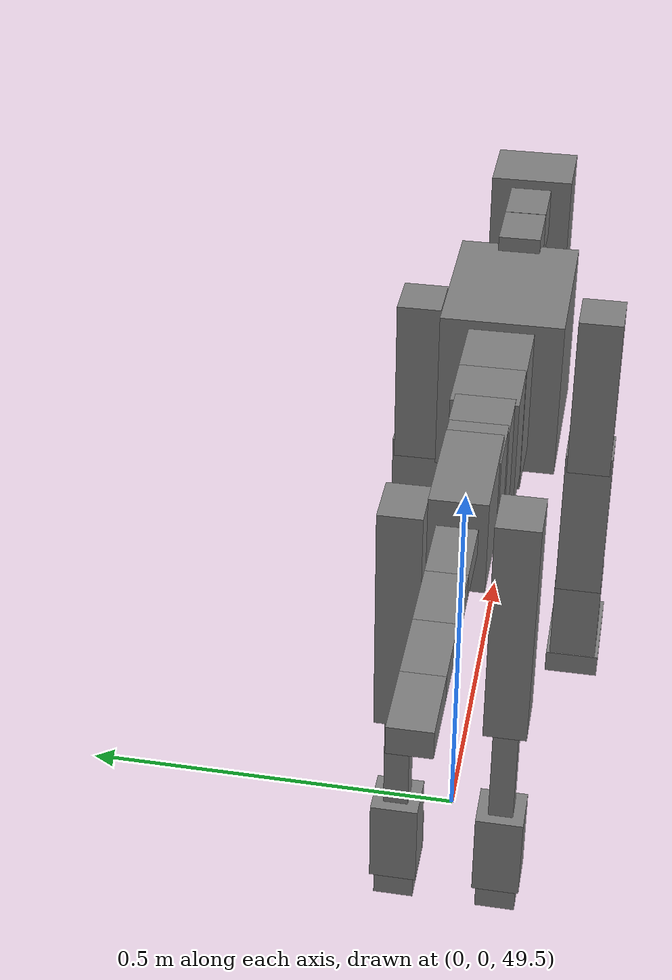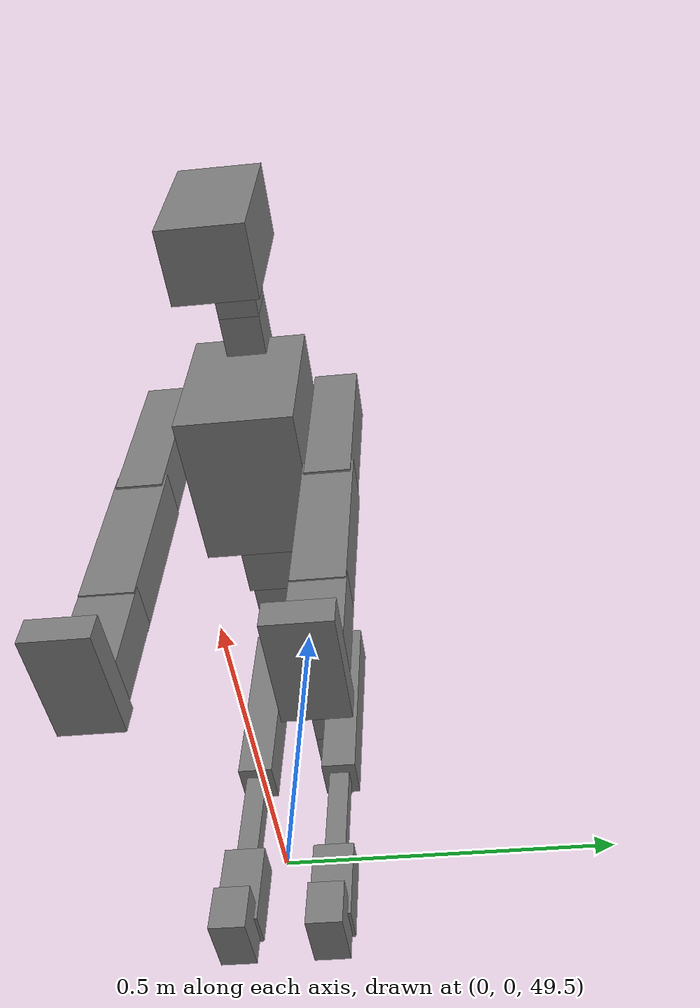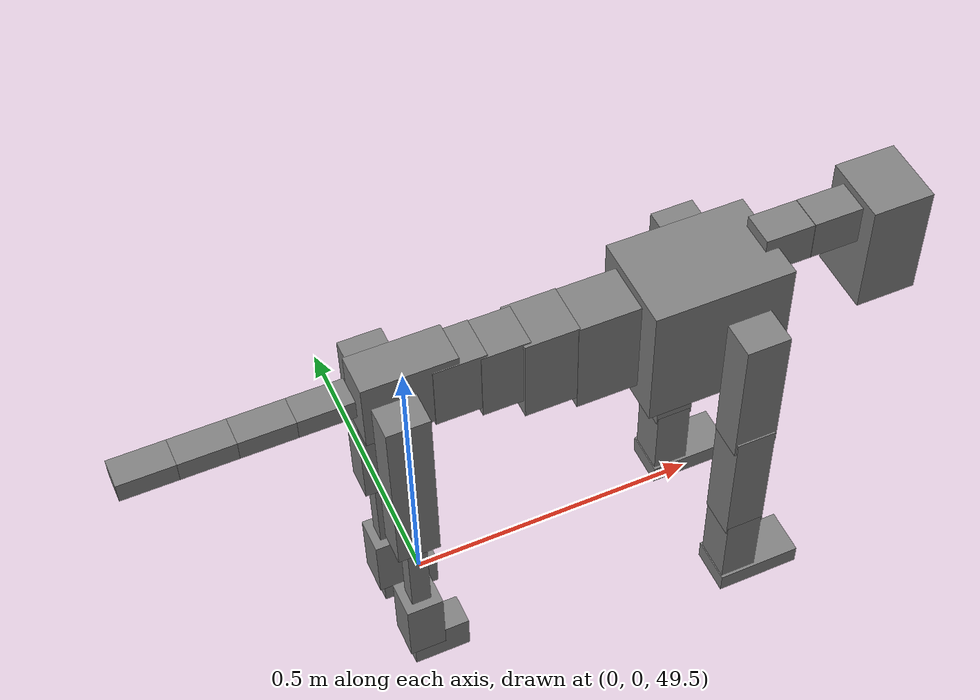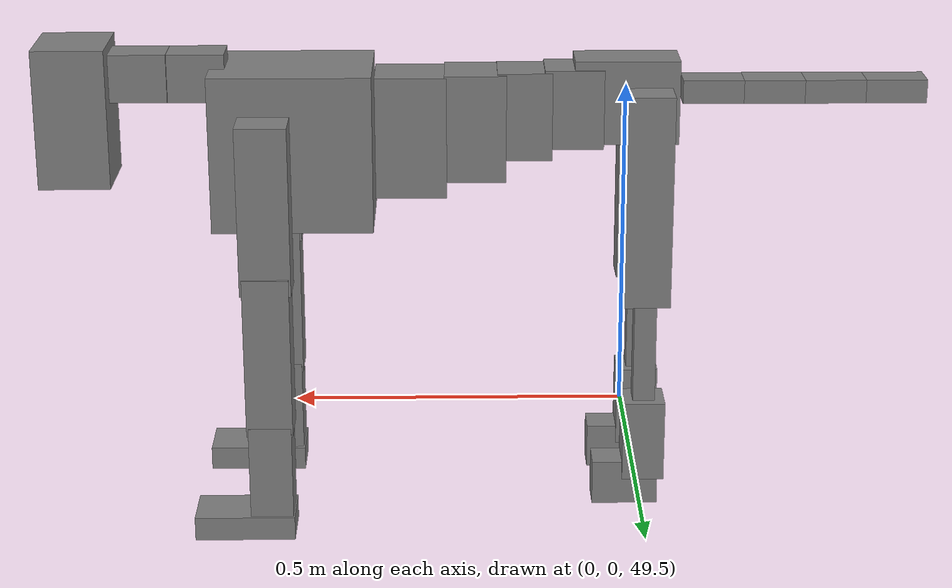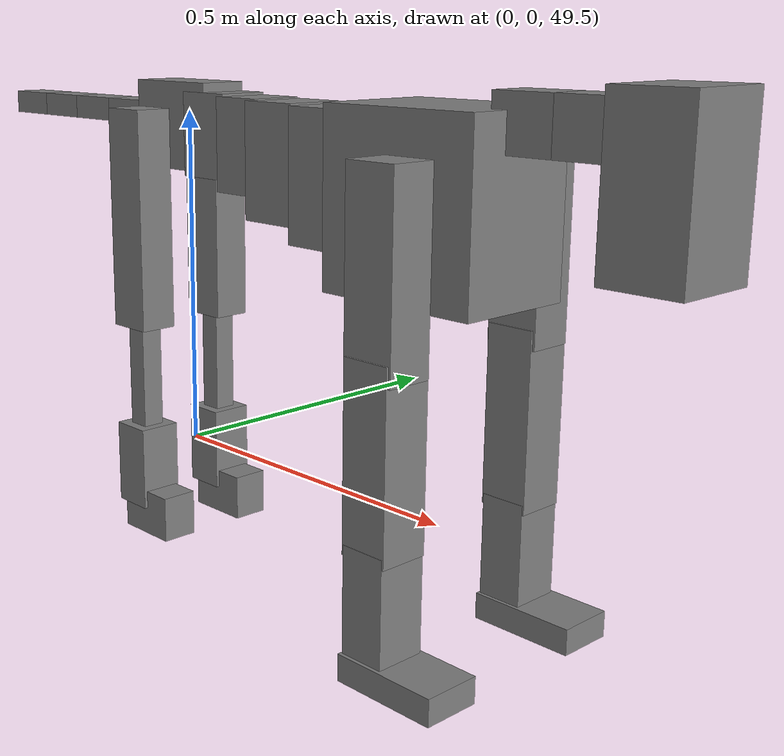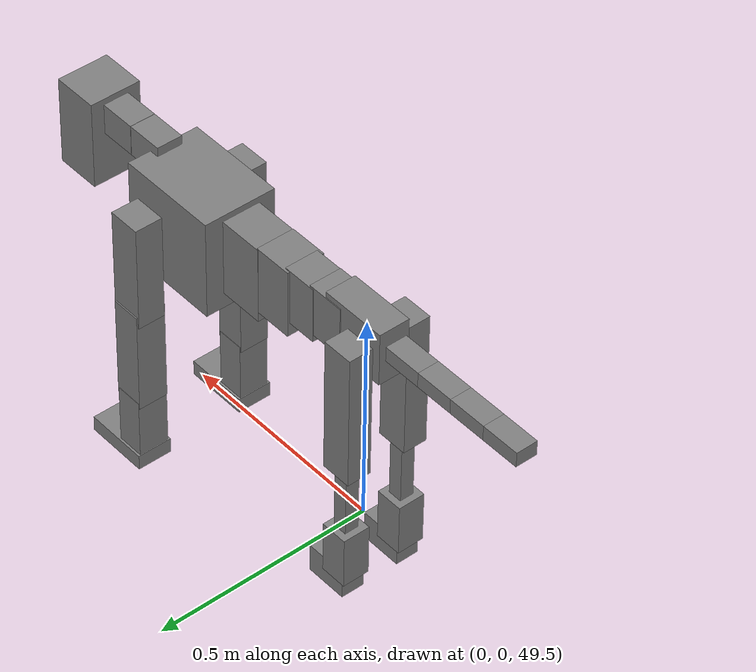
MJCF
<mujoco model="dog">

    <default>
        <joint armature="0.02" stiffness="1" damping="0.2" limited="true"/>
        <geom condim="3" friction="1 0.05 0.05" margin="0.01"/>
        <motor ctrllimited="true" ctrlrange="-1.0 1.0" forcelimited="true" gear="50"/>
    </default>

    <compiler inertiafromgeom="true" angle="radian"/>

    <option timestep="0.016" iterations="50" tolerance="1e-10" solver="Newton" jacobian="dense" cone="pyramidal"/>

    <size nconmax="20000" njmax="60000" nstack="5000000"/>
    <visual>
        <map force="0.1" zfar="30"/>
        <rgba haze="0.15 0.25 0.35 1"/>
        <quality shadowsize="2048"/>
        <global offwidth="800" offheight="800"/>
    </visual>

    <asset>
        <texture type="skybox" builtin="gradient" rgb1="0.3 0.5 0.7" rgb2="0 0 0" width="512" height="512"/>
        <texture name="texplane" type="2d" builtin="checker" rgb1=".2 .3 .4" rgb2=".1 0.15 0.2" width="512" height="512"
                 mark="cross" markrgb=".8 .8 .8"/>
        <texture name="texgeom" type="cube" builtin="flat" mark="cross" width="127" height="1278" rgb1="0.8 0.6 0.4"
                 rgb2="0.8 0.6 0.4" markrgb="1 1 1" random="0.01"/>

        <material name="matplane" reflectance="0.3" texture="texplane" texrepeat="1 1" texuniform="true"/>
        <material name="matgeom" texture="texgeom" texuniform="true" rgba="0.8 0.6 .4 1"/>
    </asset>

    <worldbody>
        <geom name="floor" pos="0 0 0" size="0 0 .25" type="plane" material="matplane" condim="3"/>

        <light directional="false" diffuse=".2 .2 .2" specular="0 0 0" pos="0 0 5" dir="0 0 -1" castshadow="false"/>
        <light mode="targetbodycom" target="torso" directional="false" diffuse=".8 .8 .8" specular="0.3 0.3 0.3"
               pos="0 0 4.0" dir="0 0 -1"/>

        <body name="root" pos="0 0 50">
            <freejoint name="root_1"/>
            <geom type="box" pos="0 0 -0.02" size="0.0774  0.0358  0.063" density="2030"/>

            <body name="spine1" pos="0.054 0 0">
                <joint name="spine1_y" axis="0 1 0" range="0 0.7" limited="true"/>
                <geom type="box" pos="0.02375 0 -0.03" size="0.04375  0.0375  0.05985" density="2030"/>

                <body name="spine2" pos="0.0612 0 0">
                    <joint name="spine2_y" axis="0 1 0" range="-0.15 0.15" limited="true"/>
                    <geom type="box" pos="0.03555  0  -0.04" size="0.04055  0.039  0.06615" density="2030"/>

                    <body name="spine3" pos="0.0730 0 0">
                        <joint name="spine3_y" axis="0 1 0" range="-0.15 0.15" limited="true"/>
                        <geom type="box" pos="0.03555  0  -0.057" size="0.04555  0.0445  0.081" density="2030"/>

                        <body name="spine4" pos="0.0780 0 0">
                            <joint name="spine4_y" axis="0 1 0" range="-0.15 0.15" limited="true"/>
                            <geom type="box" pos="0.05265  0  -0.07" size="0.05265  0.045  0.09135" density="2030"/>

                            <body name="torso" pos="0.1082 0 0">
                                <joint name="torso_y" axis="0 1 0" range="-0.15 0.15" limited="true"/>
                                <geom type="box" pos="0.11925  0  -0.085" size="0.11925  0.085  0.11745"
                                      density="2030"/>

                                <body name="neck1" pos="0.2160  0   0.0180">
                                    <joint name="neck1_y" axis="0 1 0" range="-1.2  -1" limited="true"/>
                                    <geom type="box" pos="0.0423  0  0" size="0.0423  0.03  0.036" density="2325"/>

                                    <body name="neck2" pos="0.0853  0  0">
                                        <joint name="neck2_y" axis="0 1 0" range="0.1  0" limited="true"/>
                                        <geom type="box" pos="0.0423  0  0" size="0.0423  0.03  0.036" density="2325"/>

                                        <body name="head" pos="0.0853  0  0">
                                            <joint name="head_y" axis="0 1 0" range="-0.3  -0.2" limited="true"/>
                                            <geom type="box" pos="0.0531  0  -0.055" size="0.0531  0.06  0.1044"
                                                  density="4030"/>

                                        </body>
                                    </body>
                                </body>

                                <body name="front_shoulder" pos="0.156  0   -0.0480">
                                    <joint name="front_shoulder_y" axis="0 1 0" range="-1 1.5" limited="true"/>
                                    <geom type="box" pos="0 0.13 -0.1000" size="0.0375  0.0320  0.1267" density="1158"/>
                                    <geom type="box" pos="0 -0.13 -0.1000" size="0.0375  0.0320  0.1267"
                                          density="1158"/>

                                    <body name="front_elbow" pos="0  0  -0.2001">
                                        <joint name="front_elbow_y" axis="0 1 0" range="-2 0" limited="true"/>
                                        <geom type="box" pos="0 0.13 -0.1229" size="0.0343  0.0350  0.1229"
                                              density="1081"/>
                                        <geom type="box" pos="0 -0.13 -0.1229" size="0.0343  0.0350  0.1229"
                                              density="1081"/>

                                        <body name="front_wrist" pos="0  0  -0.2457">
                                            <joint name="front_wrist_y" axis="0 1 0" range="-0.2 0" limited="true"/>
                                            <geom type="box" pos="0 0.13 -0.0719" size="0.0320  0.0356  0.0850"
                                                  density="1664"/>
                                            <geom type="box" pos="0 -0.13 -0.0719" size="0.0320  0.0356  0.0850"
                                                  density="1664"/>

                                            <body name="front_finger_end" pos="0  0  -0.1438">
                                                <joint name="front_finger_y" axis="0 1 0" range="-0.4 1"
                                                       limited="true"/>
                                                <geom type="box" pos="0.0408  0.13  -0.0031"
                                                      size="0.0748  0.0408  0.0181" density="1515"/>
                                                <geom type="box" pos="0.0408  -0.13  -0.0031"
                                                      size="0.0748  0.0408  0.0181" density="1515"/>

                                            </body>

                                        </body>
                                    </body>
                                </body>

                            </body>
                        </body>
                    </body>
                </body>
            </body>

            <body name="back_hip" pos="-0.03 0 -0.018">
                <joint name="back_hip_y" axis="0 1 0" range="-1.5 0.3" limited="true"/>
                <geom type="box" pos="0 0.07 -0.1385" size="0.0357  0.0280  0.1613" density="1154"/>
                <geom type="box" pos="0 -0.07 -0.1385" size="0.0357  0.0280  0.1613" density="1154"/>

                <body name="back_knee" pos="0  0  -0.2769">
                    <joint name="back_knee_y" axis="0 1 0" range="0 2.8" limited="true"/>
                    <geom type="box" pos="0 0.07 -0.0934" size="0.0167  0.0164  0.1089" density="1227"/>
                    <geom type="box" pos="0 -0.07 -0.0934" size="0.0167  0.0164  0.1089" density="1227"/>

                    <body name="back_ankle" pos="0  0  -0.1868">
                        <joint name="back_ankle_y" axis="0 1 0" range="-2.2 0" limited="true"/>
                        <geom type="box" pos="0 0.07 -0.0506" size="0.0316  0.0316  0.0619" density="1284"/>
                        <geom type="box" pos="0 -0.07 -0.0506" size="0.0316  0.0316  0.0619" density="1284"/>

                        <body name="back_toe_end" pos="0  0  -0.1013">
                            <joint name="back_toe_y" axis="0 1 0" range="-0.4 1" limited="true"/>
                            <geom type="box" pos="0.0270  0.07  -0.0187" size="0.0495  0.0270  0.0337" density="1515"/>
                            <geom type="box" pos="0.0270  -0.07  -0.0187" size="0.0495  0.0270  0.0337" density="1515"/>

                        </body>
                    </body>
                </body>
            </body>

            <body name="tail1" pos="-0.074 0 -0.006">
                <joint name="tail1_y" axis="0 1 0" range="-0.2 0.2" limited="true"/>
                <geom type="box" pos="-0.0536  0  0" size="0.045  0.025  0.0175" density="1587"/>

                <body name="tail2" pos="-0.09 0 0">
                    <joint name="tail2_y" axis="0 1 0" range="-0.2 0.2" limited="true"/>
                    <geom type="box" pos="-0.0536  0  0" size="0.045  0.025  0.0175" density="1587"/>

                    <body name="tail3" pos="-0.09 0 0">
                        <joint name="tail3_y" axis="0 1 0" range="-0.2 0.2" limited="true"/>
                        <geom type="box" pos="-0.0536  0  0" size="0.045  0.025  0.0175" density="1587"/>

                        <body name="tail4" pos="-0.09 0 0">
                            <joint name="tail4_y" axis="0 1 0" range="-0.2 0.2" limited="true"/>
                            <geom type="box" pos="-0.0536  0  0" size="0.045  0.025  0.0175" density="1587"/>

                        </body>
                    </body>
                </body>
            </body>
        </body>
    </worldbody>

    <actuator>
        <motor joint="spine1_y" forcerange="-150 150     "/>
        <motor joint="spine2_y" forcerange="-150 150     "/>
        <motor joint="spine3_y" forcerange="-150 150     "/>
        <motor joint="spine4_y" forcerange="-150 150     "/>
        <motor joint="torso_y" forcerange="-150 150     "/>
        <motor joint="neck1_y" forcerange="-100 100       "/>
        <motor joint="neck2_y" forcerange="-100 100       "/>
        <motor joint="head_y" forcerange="-150 150       "/>
        <motor joint="front_shoulder_y" forcerange="-144.50 169.08"/>
        <motor joint="front_elbow_y" forcerange="-185.42 169.42"/>
        <motor joint="front_wrist_y" forcerange="-142.96 141.48"/>
        <motor joint="front_finger_y" forcerange="-99.46 78.09"/>
        <motor joint="back_hip_y" forcerange="-220.09 352.87"/>
        <motor joint="back_knee_y" forcerange="-217.74 221.47"/>
        <motor joint="back_angle_y" forcerange="-159.70 245.99"/>
        <motor joint="back_toe_y" forcerange="-36.86 99.23"/>
        <motor joint="tail1_y" forcerange="-50 50     "/>
        <motor joint="tail2_y" forcerange="-50 50     "/>
        <motor joint="tail3_y" forcerange="-50 50     "/>
        <motor joint="tail4_y" forcerange="-50 50     "/>
    </actuator>
</mujoco>
